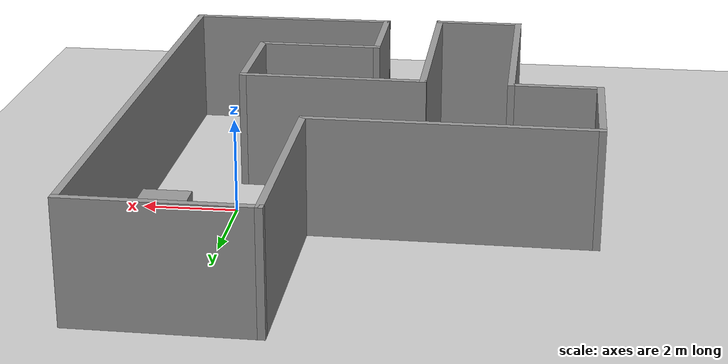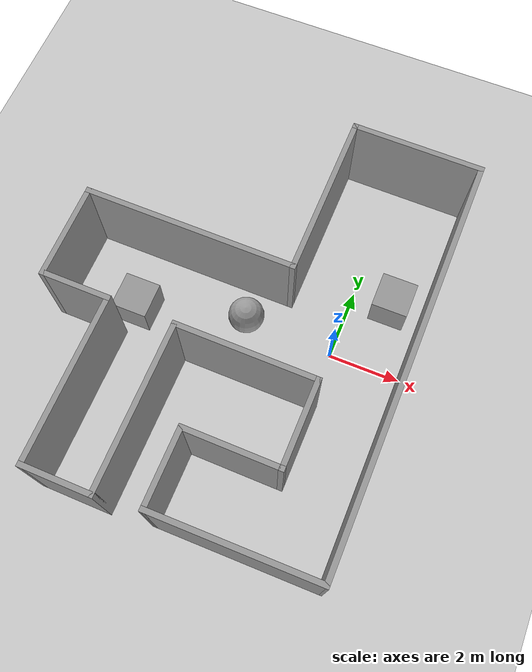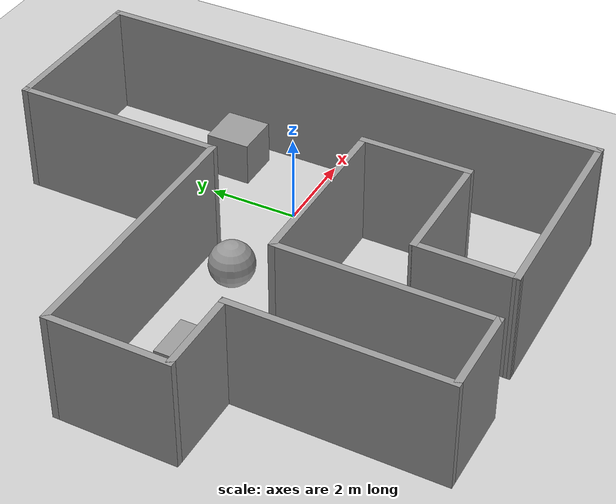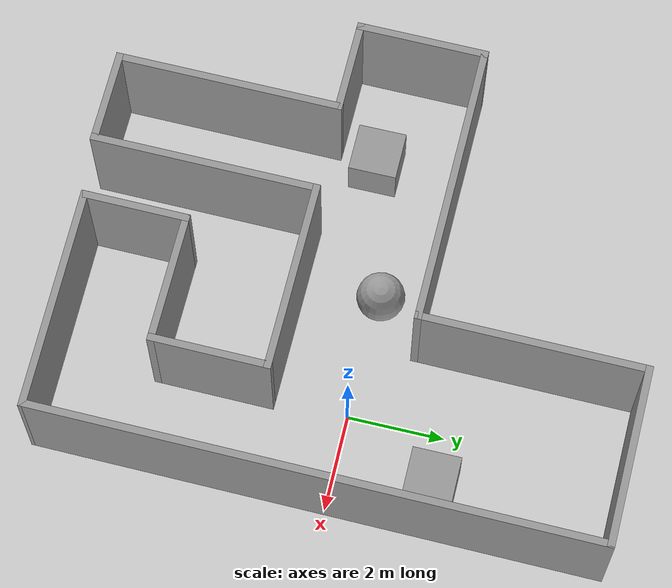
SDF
<sdf version="1.7">
 <world name="default">
  <light name="sun" type="directional">
   <pose>0 0 10 0 -0 0</pose>
   <diffuse>0.8 0.8 0.8 1</diffuse>
   <specular>0.2 0.2 0.2 1</specular>
   <attenuation>
    <range>1000</range>
    <constant>0.9</constant>
    <linear>0.01</linear>
    <quadratic>0.001</quadratic>
   </attenuation>
   <direction>-0.5 0.1 -0.9</direction>
   <spot><inner_angle>0</inner_angle><outer_angle>0</outer_angle><falloff>0</falloff></spot>
  </light>
  <model name="ground_plane">
   <static>1</static>
   <link name="link">
    <collision name="collision">
     <geometry><plane><normal>0 0 1</normal><size>100 100</size></plane></geometry>
     <surface>
      <contact><collide_bitmask>65535</collide_bitmask></contact>
      <friction><ode><mu>100</mu><mu2>50</mu2></ode></friction>
     </surface>
    </collision>
    <visual name="visual">
     <cast_shadows>0</cast_shadows>
     <geometry><plane><normal>0 0 1</normal><size>100 100</size></plane></geometry>
     <material>
      <script><uri>file://media/materials/scripts/gazebo.material</uri><name>Gazebo/Grey</name></script>
     </material>
    </visual>
   </link>
  </model>
  <gravity>0 0 -9.8</gravity>
  <magnetic_field>6e-06 2.3e-05 -4.2e-05</magnetic_field>
  <atmosphere type="adiabatic"/>
  <physics type="ode">
   <max_step_size>0.001</max_step_size>
   <real_time_factor>1</real_time_factor>
   <real_time_update_rate>1000</real_time_update_rate>
  </physics>
  <scene><ambient>0.4 0.4 0.4 1</ambient><background>0.7 0.7 0.7 1</background><shadows>1</shadows></scene>
  <audio><device>default</device></audio>
  <spherical_coordinates>
   <surface_model>EARTH_WGS84</surface_model>
   <latitude_deg>0</latitude_deg>
   <longitude_deg>0</longitude_deg>
   <elevation>0</elevation>
   <heading_deg>0</heading_deg>
  </spherical_coordinates>
  <model name="rl_world02">
   <pose>-2.70646 -0.258139 0 0 -0 1.56325</pose>
   <link name="Wall_10">
    <collision name="Wall_10_Collision">
     <geometry><box><size>4.75 0.15 2.5</size></box></geometry>
     <pose>0 0 1.25 0 -0 0</pose>
    </collision>
    <visual name="Wall_10_Visual">
     <pose>0 0 1.25 0 -0 0</pose>
     <geometry><box><size>4.75 0.15 2.5</size></box></geometry>
     <material>
      <script><uri>file://media/materials/scripts/gazebo.material</uri><name>Gazebo/Grey</name></script>
      <ambient>1 1 1 1</ambient>
     </material>
     <meta><layer>0</layer></meta>
    </visual>
    <pose>-3.6 2.87541 0 0 -0 3.14159</pose>
   </link>
   <link name="Wall_11">
    <collision name="Wall_11_Collision">
     <geometry><box><size>2 0.15 2.5</size></box></geometry>
     <pose>0 0 1.25 0 -0 0</pose>
    </collision>
    <visual name="Wall_11_Visual">
     <pose>0 0 1.25 0 -0 0</pose>
     <geometry><box><size>2 0.15 2.5</size></box></geometry>
     <material>
      <script><uri>file://media/materials/scripts/gazebo.material</uri><name>Gazebo/Grey</name></script>
      <ambient>1 1 1 1</ambient>
     </material>
     <meta><layer>0</layer></meta>
    </visual>
    <pose>-5.9 1.95041 0 0 -0 -1.5708</pose>
   </link>
   <link name="Wall_12">
    <collision name="Wall_12_Collision">
     <geometry><box><size>4.75 0.15 2.5</size></box></geometry>
     <pose>0 0 1.25 0 -0 0</pose>
    </collision>
    <visual name="Wall_12_Visual">
     <pose>0 0 1.25 0 -0 0</pose>
     <geometry><box><size>4.75 0.15 2.5</size></box></geometry>
     <material>
      <script><uri>file://media/materials/scripts/gazebo.material</uri><name>Gazebo/Grey</name></script>
      <ambient>1 1 1 1</ambient>
     </material>
     <meta><layer>0</layer></meta>
    </visual>
    <pose>-3.6 1.02541 0 0 -0 0</pose>
   </link>
   <link name="Wall_13">
    <collision name="Wall_13_Collision">
     <geometry><box><size>4 0.15 2.5</size></box></geometry>
     <pose>0 0 1.25 0 -0 0</pose>
    </collision>
    <visual name="Wall_13_Visual">
     <pose>0 0 1.25 0 -0 0</pose>
     <geometry><box><size>4 0.15 2.5</size></box></geometry>
     <material>
      <script><uri>file://media/materials/scripts/gazebo.material</uri><name>Gazebo/Grey</name></script>
      <ambient>1 1 1 1</ambient>
     </material>
     <meta><layer>0</layer></meta>
    </visual>
    <pose>-1.3 -0.899586 0 0 -0 -1.5708</pose>
   </link>
   <link name="Wall_14">
    <collision name="Wall_14_Collision">
     <geometry><box><size>2.5 0.15 2.5</size></box></geometry>
     <pose>0 0 1.25 0 -0 0</pose>
    </collision>
    <visual name="Wall_14_Visual">
     <pose>0 0 1.25 0 -0 0</pose>
     <geometry><box><size>2.5 0.15 2.5</size></box></geometry>
     <material>
      <script><uri>file://media/materials/scripts/gazebo.material</uri><name>Gazebo/Grey</name></script>
      <ambient>1 1 1 1</ambient>
     </material>
     <meta><layer>0</layer></meta>
    </visual>
    <pose>-2.475 -2.82459 0 0 -0 3.14159</pose>
   </link>
   <link name="Wall_15">
    <collision name="Wall_15_Collision">
     <geometry><box><size>2.75 0.15 2.5</size></box></geometry>
     <pose>0 0 1.25 0 -0 0</pose>
    </collision>
    <visual name="Wall_15_Visual">
     <pose>0 0 1.25 0 -0 0</pose>
     <geometry><box><size>2.75 0.15 2.5</size></box></geometry>
     <material>
      <script><uri>file://media/materials/scripts/gazebo.material</uri><name>Gazebo/Grey</name></script>
      <ambient>1 1 1 1</ambient>
     </material>
     <meta><layer>0</layer></meta>
    </visual>
    <pose>-3.65 -1.52459 0 0 -0 1.5708</pose>
   </link>
   <link name="Wall_16">
    <collision name="Wall_16_Collision">
     <geometry><box><size>2.25 0.15 2.5</size></box></geometry>
     <pose>0 0 1.25 0 -0 0</pose>
    </collision>
    <visual name="Wall_16_Visual">
     <pose>0 0 1.25 0 -0 0</pose>
     <geometry><box><size>2.25 0.15 2.5</size></box></geometry>
     <material>
      <script><uri>file://media/materials/scripts/gazebo.material</uri><name>Gazebo/Grey</name></script>
      <ambient>1 1 1 1</ambient>
     </material>
     <meta><layer>0</layer></meta>
    </visual>
    <pose>-4.7 -0.224586 0 0 -0 3.14159</pose>
   </link>
   <link name="Wall_17">
    <collision name="Wall_17_Collision">
     <geometry><box><size>4.65028 0.15 2.5</size></box></geometry>
     <pose>0 0 1.25 0 -0 0</pose>
    </collision>
    <visual name="Wall_17_Visual">
     <pose>0 0 1.25 0 -0 0</pose>
     <geometry><box><size>4.65028 0.15 2.5</size></box></geometry>
     <material>
      <script><uri>file://media/materials/scripts/gazebo.material</uri><name>Gazebo/Grey</name></script>
      <ambient>1 1 1 1</ambient>
     </material>
     <meta><layer>0</layer></meta>
    </visual>
    <pose>-5.725 -2.47459 0 0 -0 -1.55969</pose>
   </link>
   <link name="Wall_4">
    <collision name="Wall_4_Collision">
     <geometry><box><size>11.75 0.15 2.5</size></box></geometry>
     <pose>0 0 1.25 0 -0 0</pose>
    </collision>
    <visual name="Wall_4_Visual">
     <pose>0 0 1.25 0 -0 0</pose>
     <geometry><box><size>11.75 0.15 2.5</size></box></geometry>
     <material>
      <script><uri>file://media/materials/scripts/gazebo.material</uri><name>Gazebo/Grey</name></script>
      <ambient>1 1 1 1</ambient>
     </material>
     <meta><layer>0</layer></meta>
    </visual>
    <pose>0.1 -4.72459 0 0 -0 0</pose>
   </link>
   <link name="Wall_5">
    <collision name="Wall_5_Collision">
     <geometry><box><size>3.75 0.15 2.5</size></box></geometry>
     <pose>0 0 1.25 0 -0 0</pose>
    </collision>
    <visual name="Wall_5_Visual">
     <pose>0 0 1.25 0 -0 0</pose>
     <geometry><box><size>3.75 0.15 2.5</size></box></geometry>
     <material>
      <script><uri>file://media/materials/scripts/gazebo.material</uri><name>Gazebo/Grey</name></script>
      <ambient>1 1 1 1</ambient>
     </material>
     <meta><layer>0</layer></meta>
    </visual>
    <pose>5.9 -2.92459 0 0 -0 1.5708</pose>
   </link>
   <link name="Wall_6">
    <collision name="Wall_6_Collision">
     <geometry><box><size>4.75 0.15 2.5</size></box></geometry>
     <pose>0 0 1.25 0 -0 0</pose>
    </collision>
    <visual name="Wall_6_Visual">
     <pose>0 0 1.25 0 -0 0</pose>
     <geometry><box><size>4.75 0.15 2.5</size></box></geometry>
     <material>
      <script><uri>file://media/materials/scripts/gazebo.material</uri><name>Gazebo/Grey</name></script>
      <ambient>1 1 1 1</ambient>
     </material>
     <meta><layer>0</layer></meta>
    </visual>
    <pose>3.6 -1.12459 0 0 -0 3.14159</pose>
   </link>
   <link name="Wall_7">
    <collision name="Wall_7_Collision">
     <geometry><box><size>6 0.15 2.5</size></box></geometry>
     <pose>0 0 1.25 0 -0 0</pose>
    </collision>
    <visual name="Wall_7_Visual">
     <pose>0 0 1.25 0 -0 0</pose>
     <geometry><box><size>6 0.15 2.5</size></box></geometry>
     <material>
      <script><uri>file://media/materials/scripts/gazebo.material</uri><name>Gazebo/Grey</name></script>
      <ambient>1 1 1 1</ambient>
     </material>
     <meta><layer>0</layer></meta>
    </visual>
    <pose>1.3 1.80041 0 0 -0 1.5708</pose>
   </link>
   <link name="Wall_8">
    <collision name="Wall_8_Collision">
     <geometry><box><size>2.75 0.15 2.5</size></box></geometry>
     <pose>0 0 1.25 0 -0 0</pose>
    </collision>
    <visual name="Wall_8_Visual">
     <pose>0 0 1.25 0 -0 0</pose>
     <geometry><box><size>2.75 0.15 2.5</size></box></geometry>
     <material>
      <script><uri>file://media/materials/scripts/gazebo.material</uri><name>Gazebo/Grey</name></script>
      <ambient>1 1 1 1</ambient>
     </material>
     <meta><layer>0</layer></meta>
    </visual>
    <pose>0 4.72541 0 0 -0 3.14159</pose>
   </link>
   <link name="Wall_9">
    <collision name="Wall_9_Collision">
     <geometry><box><size>2 0.15 2.5</size></box></geometry>
     <pose>0 0 1.25 0 -0 0</pose>
    </collision>
    <visual name="Wall_9_Visual">
     <pose>0 0 1.25 0 -0 0</pose>
     <geometry><box><size>2 0.15 2.5</size></box></geometry>
     <material>
      <script><uri>file://media/materials/scripts/gazebo.material</uri><name>Gazebo/Grey</name></script>
      <ambient>1 1 1 1</ambient>
     </material>
     <meta><layer>0</layer></meta>
    </visual>
    <pose>-1.3 3.80041 0 0 -0 -1.5708</pose>
   </link>
   <static>1</static>
  </model>
  <model name="unit_box">
   <pose>1.09413 1.96563 0.499995 0 1e-05 0</pose>
   <link name="link">
    <inertial>
     <mass>1</mass>
     <inertia>
      <ixx>0.166667</ixx>
      <ixy>0</ixy>
      <ixz>0</ixz>
      <iyy>0.166667</iyy>
      <iyz>0</iyz>
      <izz>0.166667</izz>
     </inertia>
    </inertial>
    <collision name="collision"><geometry><box><size>1 1 1</size></box></geometry></collision>
    <visual name="visual">
     <geometry><box><size>1 1 1</size></box></geometry>
     <material>
      <script><name>Gazebo/Grey</name><uri>file://media/materials/scripts/gazebo.material</uri></script>
     </material>
    </visual>
   </link>
  </model>
  <model name="unit_sphere">
   <pose>-2.52906 0.087857 0.5 0 -0 0</pose>
   <link name="link">
    <inertial>
     <mass>1</mass>
     <inertia><ixx>0.1</ixx><ixy>0</ixy><ixz>0</ixz><iyy>0.1</iyy><iyz>0</iyz><izz>0.1</izz></inertia>
    </inertial>
    <collision name="collision"><geometry><sphere><radius>0.5</radius></sphere></geometry></collision>
    <visual name="visual">
     <geometry><sphere><radius>0.5</radius></sphere></geometry>
     <material>
      <script><name>Gazebo/Grey</name><uri>file://media/materials/scripts/gazebo.material</uri></script>
     </material>
    </visual>
   </link>
  </model>
  <model name="unit_box_0">
   <pose>-5.46478 -0.678974 0.5 0 -0 0</pose>
   <link name="link">
    <inertial>
     <mass>1</mass>
     <inertia>
      <ixx>0.166667</ixx>
      <ixy>0</ixy>
      <ixz>0</ixz>
      <iyy>0.166667</iyy>
      <iyz>0</iyz>
      <izz>0.166667</izz>
     </inertia>
    </inertial>
    <collision name="collision"><geometry><box><size>1 1 1</size></box></geometry></collision>
    <visual name="visual">
     <geometry><box><size>1 1 1</size></box></geometry>
     <material>
      <script><name>Gazebo/Grey</name><uri>file://media/materials/scripts/gazebo.material</uri></script>
     </material>
    </visual>
   </link>
  </model>
 </world>
</sdf>
